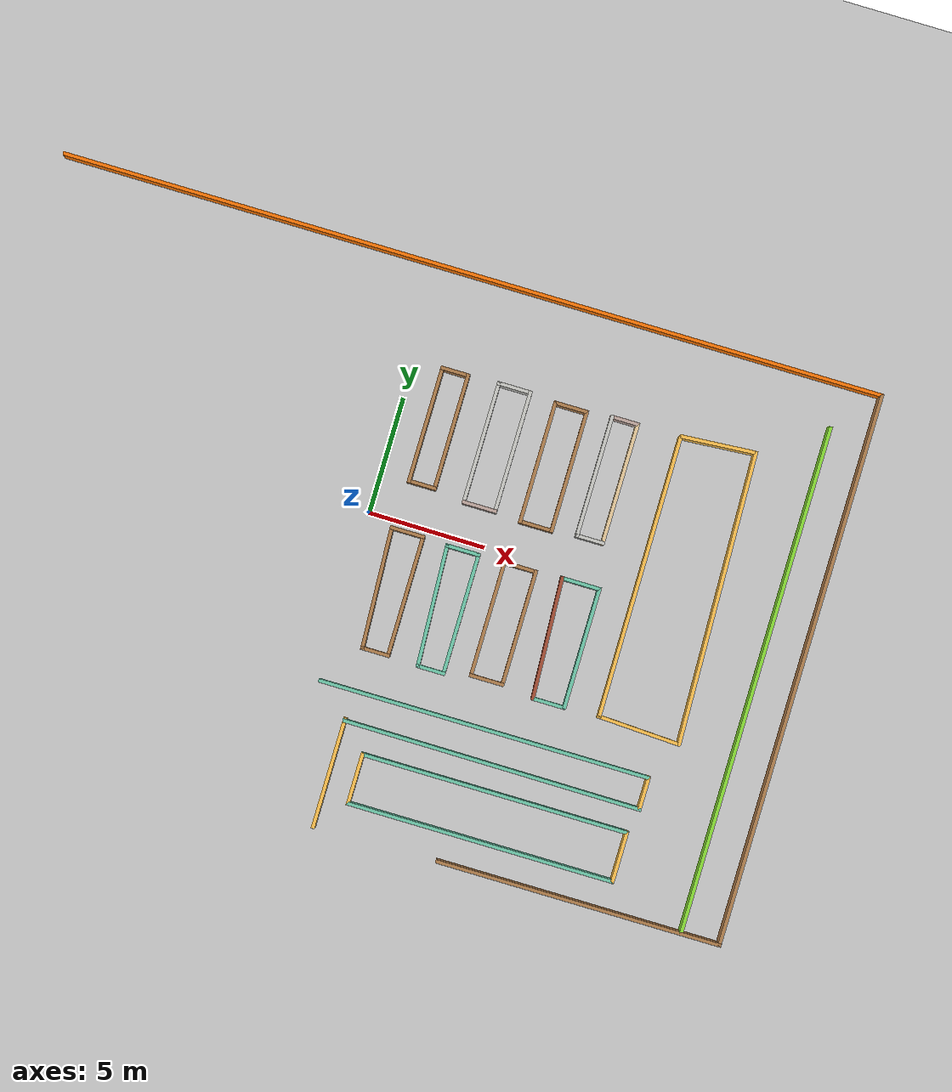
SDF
<sdf version="1.7">
 <world name="default">
  <model name="ground_plane">
   <static>1</static>
   <link name="link">
    <collision name="collision">
     <geometry><plane><normal>0 0 1</normal><size>100 100</size></plane></geometry>
     <surface>
      <contact><collide_bitmask>65535</collide_bitmask></contact>
      <friction><ode><mu>100</mu><mu2>50</mu2></ode></friction>
     </surface>
    </collision>
    <visual name="visual">
     <cast_shadows>0</cast_shadows>
     <geometry><plane><normal>0 0 1</normal><size>100 100</size></plane></geometry>
     <material>
      <script><uri>file://media/materials/scripts/gazebo.material</uri><name>Gazebo/Grey</name></script>
     </material>
    </visual>
   </link>
  </model>
  <model name="puzzle2">
   <pose>1.36187 -1.26635 0 0 -0 0</pose>
   <link name="Wall_0">
    <collision name="Wall_0_Collision">
     <geometry><box><size>35.25 0.15 2.5</size></box></geometry>
     <pose>0 0 1.25 0 -0 0</pose>
    </collision>
    <visual name="Wall_0_Visual">
     <pose>0 0 1.25 0 -0 0</pose>
     <geometry><box><size>35.25 0.15 2.5</size></box></geometry>
     <material>
      <script><uri>file://media/materials/scripts/gazebo.material</uri><name>Gazebo/Grey</name></script>
      <ambient>0.996078 0.47451 0.0196078 1</ambient>
     </material>
     <meta><layer>0</layer></meta>
    </visual>
    <pose>-0 11.8906 0 0 -0 0</pose>
   </link>
   <link name="Wall_1">
    <collision name="Wall_1_Collision">
     <geometry><box><size>23.75 0.15 2.5</size></box></geometry>
     <pose>0 0 1.25 0 -0 0</pose>
    </collision>
    <visual name="Wall_1_Visual">
     <pose>0 0 1.25 0 -0 0</pose>
     <geometry><box><size>23.75 0.15 2.5</size></box></geometry>
     <material>
      <script><uri>file://media/materials/scripts/gazebo.material</uri><name>Gazebo/Wood</name></script>
      <ambient>1 1 1 1</ambient>
     </material>
     <meta><layer>0</layer></meta>
    </visual>
    <pose>17.55 0.090589 0 0 -0 -1.5708</pose>
   </link>
   <link name="Wall_100">
    <collision name="Wall_100_Collision">
     <geometry><box><size>1.5 0.15 2.5</size></box></geometry>
     <pose>0 0 1.25 0 -0 0</pose>
    </collision>
    <visual name="Wall_100_Visual">
     <pose>0 0 1.25 0 -0 0</pose>
     <geometry><box><size>1.5 0.15 2.5</size></box></geometry>
     <material>
      <script><uri>file://media/materials/scripts/gazebo.material</uri><name>Gazebo/Grey</name></script>
      <ambient>0.435294 0.796078 0.67451 1</ambient>
     </material>
     <meta><layer>0</layer></meta>
    </visual>
    <pose>7.98306 -4.15656 0 0 -0 3.14159</pose>
   </link>
   <link name="Wall_101">
    <collision name="Wall_101_Collision">
     <geometry><box><size>5.25612 0.15 2.5</size></box></geometry>
     <pose>0 0 1.25 0 -0 0</pose>
    </collision>
    <visual name="Wall_101_Visual">
     <pose>0 0 1.25 0 -0 0</pose>
     <geometry><box><size>5.25612 0.15 2.5</size></box></geometry>
     <material>
      <script><uri>file://media/materials/scripts/gazebo.material</uri><name>Gazebo/Bricks</name></script>
      <ambient>0.435294 0.796078 0.67451 1</ambient>
     </material>
     <meta><layer>0</layer></meta>
    </visual>
    <pose>7.18306 -1.60656 0 0 -0 1.61978</pose>
   </link>
   <link name="Wall_105">
    <collision name="Wall_105_Collision">
     <geometry><box><size>4.75 0.15 2.5</size></box></geometry>
     <pose>0 0 1.25 0 -0 0</pose>
    </collision>
    <visual name="Wall_105_Visual">
     <pose>0 0 1.25 0 -0 0</pose>
     <geometry><box><size>4.75 0.15 2.5</size></box></geometry>
     <material>
      <script><uri>file://media/materials/scripts/gazebo.material</uri><name>Gazebo/Grey</name></script>
      <ambient>1 0.764706 0.305882 1</ambient>
     </material>
     <meta><layer>0</layer></meta>
    </visual>
    <pose>0.134802 -9.48263 0 0 -0 1.5708</pose>
   </link>
   <link name="Wall_106">
    <collision name="Wall_106_Collision">
     <geometry><box><size>12.823 0.15 2.5</size></box></geometry>
     <pose>0 0 1.25 0 -0 0</pose>
    </collision>
    <visual name="Wall_106_Visual">
     <pose>0 0 1.25 0 -0 0</pose>
     <geometry><box><size>12.823 0.15 2.5</size></box></geometry>
     <material>
      <script><uri>file://media/materials/scripts/gazebo.material</uri><name>Gazebo/Grey</name></script>
      <ambient>0.435294 0.796078 0.67451 1</ambient>
     </material>
     <meta><layer>0</layer></meta>
    </visual>
    <pose>6.47079 -7.26288 0 0 -0 -0.004222</pose>
   </link>
   <link name="Wall_107">
    <collision name="Wall_107_Collision">
     <geometry><box><size>1.5 0.15 2.5</size></box></geometry>
     <pose>0 0 1.25 0 -0 0</pose>
    </collision>
    <visual name="Wall_107_Visual">
     <pose>0 0 1.25 0 -0 0</pose>
     <geometry><box><size>1.5 0.15 2.5</size></box></geometry>
     <material>
      <script><uri>file://media/materials/scripts/gazebo.material</uri><name>Gazebo/Grey</name></script>
      <ambient>1 0.764706 0.305882 1</ambient>
     </material>
     <meta><layer>0</layer></meta>
    </visual>
    <pose>12.8068 -6.61463 0 0 -0 1.5708</pose>
   </link>
   <link name="Wall_108">
    <collision name="Wall_108_Collision">
     <geometry><box><size>14.25 0.15 2.5</size></box></geometry>
     <pose>0 0 1.25 0 -0 0</pose>
    </collision>
    <visual name="Wall_108_Visual">
     <pose>0 0 1.25 0 -0 0</pose>
     <geometry><box><size>14.25 0.15 2.5</size></box></geometry>
     <material>
      <script><uri>file://media/materials/scripts/gazebo.material</uri><name>Gazebo/Grey</name></script>
      <ambient>0.435294 0.796078 0.67451 1</ambient>
     </material>
     <meta><layer>0</layer></meta>
    </visual>
    <pose>5.75678 -5.93963 0 0 -0 3.14159</pose>
   </link>
   <link name="Wall_11">
    <collision name="Wall_11_Collision">
     <geometry><box><size>21.75 0.15 2.5</size></box></geometry>
     <pose>0 0 1.25 0 -0 0</pose>
    </collision>
    <visual name="Wall_11_Visual">
     <pose>0 0 1.25 0 -0 0</pose>
     <geometry><box><size>21.75 0.15 2.5</size></box></geometry>
     <material>
      <script><uri>file://media/materials/scripts/gazebo.material</uri><name>Gazebo/Grey</name></script>
      <ambient>0.541176 0.886275 0.203922 1</ambient>
     </material>
     <meta><layer>0</layer></meta>
    </visual>
    <pose>15.9 -0.809411 0 0 -0 -1.5708</pose>
   </link>
   <link name="Wall_112">
    <collision name="Wall_112_Collision">
     <geometry><box><size>11.5 0.15 2.5</size></box></geometry>
     <pose>0 0 1.25 0 -0 0</pose>
    </collision>
    <visual name="Wall_112_Visual">
     <pose>0 0 1.25 0 -0 0</pose>
     <geometry><box><size>11.5 0.15 2.5</size></box></geometry>
     <material>
      <script><uri>file://media/materials/scripts/gazebo.material</uri><name>Gazebo/Grey</name></script>
      <ambient>0.435294 0.796078 0.67451 1</ambient>
     </material>
     <meta><layer>0</layer></meta>
    </visual>
    <pose>6.91505 -8.35989 0 0 -0 0</pose>
   </link>
   <link name="Wall_113">
    <collision name="Wall_113_Collision">
     <geometry><box><size>2.25 0.15 2.5</size></box></geometry>
     <pose>0 0 1.25 0 -0 0</pose>
    </collision>
    <visual name="Wall_113_Visual">
     <pose>0 0 1.25 0 -0 0</pose>
     <geometry><box><size>2.25 0.15 2.5</size></box></geometry>
     <material>
      <script><uri>file://media/materials/scripts/gazebo.material</uri><name>Gazebo/Grey</name></script>
      <ambient>1 0.764706 0.305882 1</ambient>
     </material>
     <meta><layer>0</layer></meta>
    </visual>
    <pose>12.59 -9.40989 0 0 -0 -1.5708</pose>
   </link>
   <link name="Wall_114">
    <collision name="Wall_114_Collision">
     <geometry><box><size>11.5 0.15 2.5</size></box></geometry>
     <pose>0 0 1.25 0 -0 0</pose>
    </collision>
    <visual name="Wall_114_Visual">
     <pose>0 0 1.25 0 -0 0</pose>
     <geometry><box><size>11.5 0.15 2.5</size></box></geometry>
     <material>
      <script><uri>file://media/materials/scripts/gazebo.material</uri><name>Gazebo/Grey</name></script>
      <ambient>0.435294 0.796078 0.67451 1</ambient>
     </material>
     <meta><layer>0</layer></meta>
    </visual>
    <pose>6.91505 -10.4599 0 0 -0 3.14159</pose>
   </link>
   <link name="Wall_115">
    <collision name="Wall_115_Collision">
     <geometry><box><size>2.25 0.15 2.5</size></box></geometry>
     <pose>0 0 1.25 0 -0 0</pose>
    </collision>
    <visual name="Wall_115_Visual">
     <pose>0 0 1.25 0 -0 0</pose>
     <geometry><box><size>2.25 0.15 2.5</size></box></geometry>
     <material>
      <script><uri>file://media/materials/scripts/gazebo.material</uri><name>Gazebo/Grey</name></script>
      <ambient>1 0.764706 0.305882 1</ambient>
     </material>
     <meta><layer>0</layer></meta>
    </visual>
    <pose>1.24005 -9.40989 0 0 -0 1.5708</pose>
   </link>
   <link name="Wall_2">
    <collision name="Wall_2_Collision">
     <geometry><box><size>12.25 0.15 2.5</size></box></geometry>
     <pose>0 0 1.25 0 -0 0</pose>
    </collision>
    <visual name="Wall_2_Visual">
     <pose>0 0 1.25 0 -0 0</pose>
     <geometry><box><size>12.25 0.15 2.5</size></box></geometry>
     <material>
      <script><uri>file://media/materials/scripts/gazebo.material</uri><name>Gazebo/Wood</name></script>
      <ambient>1 1 1 1</ambient>
     </material>
     <meta><layer>0</layer></meta>
    </visual>
    <pose>11.5 -11.7094 0 0 -0 3.14159</pose>
   </link>
   <link name="Wall_38">
    <collision name="Wall_38_Collision">
     <geometry><box><size>5 0.15 2.5</size></box></geometry>
     <pose>0 0 1.25 0 -0 0</pose>
    </collision>
    <visual name="Wall_38_Visual">
     <pose>0 0 1.25 0 -0 0</pose>
     <geometry><box><size>5 0.15 2.5</size></box></geometry>
     <material>
      <script><uri>file://media/materials/scripts/gazebo.material</uri><name>Gazebo/Wood</name></script>
      <ambient>1 1 1 1</ambient>
     </material>
     <meta><layer>0</layer></meta>
    </visual>
    <pose>-0.130278 5.41789 0 0 -0 -1.5708</pose>
   </link>
   <link name="Wall_39">
    <collision name="Wall_39_Collision">
     <geometry><box><size>1.25 0.15 2.5</size></box></geometry>
     <pose>0 0 1.25 0 -0 0</pose>
    </collision>
    <visual name="Wall_39_Visual">
     <pose>0 0 1.25 0 -0 0</pose>
     <geometry><box><size>1.25 0.15 2.5</size></box></geometry>
     <material>
      <script><uri>file://media/materials/scripts/gazebo.material</uri><name>Gazebo/Wood</name></script>
      <ambient>1 1 1 1</ambient>
     </material>
     <meta><layer>0</layer></meta>
    </visual>
    <pose>0.419722 2.99289 0 0 -0 0</pose>
   </link>
   <link name="Wall_40">
    <collision name="Wall_40_Collision">
     <geometry><box><size>5 0.15 2.5</size></box></geometry>
     <pose>0 0 1.25 0 -0 0</pose>
    </collision>
    <visual name="Wall_40_Visual">
     <pose>0 0 1.25 0 -0 0</pose>
     <geometry><box><size>5 0.15 2.5</size></box></geometry>
     <material>
      <script><uri>file://media/materials/scripts/gazebo.material</uri><name>Gazebo/Wood</name></script>
      <ambient>1 1 1 1</ambient>
     </material>
     <meta><layer>0</layer></meta>
    </visual>
    <pose>0.969722 5.41789 0 0 -0 1.5708</pose>
   </link>
   <link name="Wall_41">
    <collision name="Wall_41_Collision">
     <geometry><box><size>1.25 0.15 2.5</size></box></geometry>
     <pose>0 0 1.25 0 -0 0</pose>
    </collision>
    <visual name="Wall_41_Visual">
     <pose>0 0 1.25 0 -0 0</pose>
     <geometry><box><size>1.25 0.15 2.5</size></box></geometry>
     <material>
      <script><uri>file://media/materials/scripts/gazebo.material</uri><name>Gazebo/Wood</name></script>
      <ambient>1 1 1 1</ambient>
     </material>
     <meta><layer>0</layer></meta>
    </visual>
    <pose>0.419722 7.84289 0 0 -0 3.14159</pose>
   </link>
   <link name="Wall_43">
    <collision name="Wall_43_Collision">
     <geometry><box><size>5.25 0.15 2.5</size></box></geometry>
     <pose>0 0 1.25 0 -0 0</pose>
    </collision>
    <visual name="Wall_43_Visual">
     <pose>0 0 1.25 0 -0 0</pose>
     <geometry><box><size>5.25 0.15 2.5</size></box></geometry>
     <material>
      <script><uri>file://media/materials/scripts/gazebo.material</uri><name>Gazebo/CeilingTiled</name></script>
      <ambient>0.921569 0.807843 0.615686 1</ambient>
     </material>
     <meta><layer>0</layer></meta>
    </visual>
    <pose>2.27733 5.34639 0 0 -0 -1.5708</pose>
   </link>
   <link name="Wall_44">
    <collision name="Wall_44_Collision">
     <geometry><box><size>1.5 0.15 2.5</size></box></geometry>
     <pose>0 0 1.25 0 -0 0</pose>
    </collision>
    <visual name="Wall_44_Visual">
     <pose>0 0 1.25 0 -0 0</pose>
     <geometry><box><size>1.5 0.15 2.5</size></box></geometry>
     <material>
      <script><uri>file://media/materials/scripts/gazebo.material</uri><name>Gazebo/Grey</name></script>
      <ambient>0.760784 0.662745 0.627451 1</ambient>
     </material>
     <meta><layer>0</layer></meta>
    </visual>
    <pose>2.95234 2.79639 0 0 -0 0</pose>
   </link>
   <link name="Wall_45">
    <collision name="Wall_45_Collision">
     <geometry><box><size>5.25 0.15 2.5</size></box></geometry>
     <pose>0 0 1.25 0 -0 0</pose>
    </collision>
    <visual name="Wall_45_Visual">
     <pose>0 0 1.25 0 -0 0</pose>
     <geometry><box><size>5.25 0.15 2.5</size></box></geometry>
     <material>
      <script><uri>file://media/materials/scripts/gazebo.material</uri><name>Gazebo/CeilingTiled</name></script>
      <ambient>0.921569 0.807843 0.615686 1</ambient>
     </material>
     <meta><layer>0</layer></meta>
    </visual>
    <pose>3.62733 5.34639 0 0 -0 1.5708</pose>
   </link>
   <link name="Wall_46">
    <collision name="Wall_46_Collision">
     <geometry><box><size>1.5 0.15 2.5</size></box></geometry>
     <pose>0 0 1.25 0 -0 0</pose>
    </collision>
    <visual name="Wall_46_Visual">
     <pose>0 0 1.25 0 -0 0</pose>
     <geometry><box><size>1.5 0.15 2.5</size></box></geometry>
     <material>
      <script><uri>file://media/materials/scripts/gazebo.material</uri><name>Gazebo/CeilingTiled</name></script>
      <ambient>0.760784 0.662745 0.627451 1</ambient>
     </material>
     <meta><layer>0</layer></meta>
    </visual>
    <pose>2.95234 7.89639 0 0 -0 3.14159</pose>
   </link>
   <link name="Wall_48">
    <collision name="Wall_48_Collision">
     <geometry><box><size>5.25 0.15 2.5</size></box></geometry>
     <pose>0 0 1.25 0 -0 0</pose>
    </collision>
    <visual name="Wall_48_Visual">
     <pose>0 0 1.25 0 -0 0</pose>
     <geometry><box><size>5.25 0.15 2.5</size></box></geometry>
     <material>
      <script><uri>file://media/materials/scripts/gazebo.material</uri><name>Gazebo/Wood</name></script>
      <ambient>1 1 1 1</ambient>
     </material>
     <meta><layer>0</layer></meta>
    </visual>
    <pose>4.73845 5.23938 0 0 -0 -1.5708</pose>
   </link>
   <link name="Wall_49">
    <collision name="Wall_49_Collision">
     <geometry><box><size>1.5 0.15 2.5</size></box></geometry>
     <pose>0 0 1.25 0 -0 0</pose>
    </collision>
    <visual name="Wall_49_Visual">
     <pose>0 0 1.25 0 -0 0</pose>
     <geometry><box><size>1.5 0.15 2.5</size></box></geometry>
     <material>
      <script><uri>file://media/materials/scripts/gazebo.material</uri><name>Gazebo/Wood</name></script>
      <ambient>1 1 1 1</ambient>
     </material>
     <meta><layer>0</layer></meta>
    </visual>
    <pose>5.41345 2.68938 0 0 -0 0</pose>
   </link>
   <link name="Wall_50">
    <collision name="Wall_50_Collision">
     <geometry><box><size>5.25 0.15 2.5</size></box></geometry>
     <pose>0 0 1.25 0 -0 0</pose>
    </collision>
    <visual name="Wall_50_Visual">
     <pose>0 0 1.25 0 -0 0</pose>
     <geometry><box><size>5.25 0.15 2.5</size></box></geometry>
     <material>
      <script><uri>file://media/materials/scripts/gazebo.material</uri><name>Gazebo/Wood</name></script>
      <ambient>1 1 1 1</ambient>
     </material>
     <meta><layer>0</layer></meta>
    </visual>
    <pose>6.08845 5.23938 0 0 -0 1.5708</pose>
   </link>
   <link name="Wall_51">
    <collision name="Wall_51_Collision">
     <geometry><box><size>1.5 0.15 2.5</size></box></geometry>
     <pose>0 0 1.25 0 -0 0</pose>
    </collision>
    <visual name="Wall_51_Visual">
     <pose>0 0 1.25 0 -0 0</pose>
     <geometry><box><size>1.5 0.15 2.5</size></box></geometry>
     <material>
      <script><uri>file://media/materials/scripts/gazebo.material</uri><name>Gazebo/Wood</name></script>
      <ambient>1 1 1 1</ambient>
     </material>
     <meta><layer>0</layer></meta>
    </visual>
    <pose>5.41345 7.78938 0 0 -0 3.14159</pose>
   </link>
   <link name="Wall_53">
    <collision name="Wall_53_Collision">
     <geometry><box><size>5.25 0.15 2.5</size></box></geometry>
     <pose>0 0 1.25 0 -0 0</pose>
    </collision>
    <visual name="Wall_53_Visual">
     <pose>0 0 1.25 0 -0 0</pose>
     <geometry><box><size>5.25 0.15 2.5</size></box></geometry>
     <material>
      <script><uri>file://media/materials/scripts/gazebo.material</uri><name>Gazebo/CeilingTiled</name></script>
      <ambient>0.921569 0.807843 0.615686 1</ambient>
     </material>
     <meta><layer>0</layer></meta>
    </visual>
    <pose>7.14606 5.34639 0 0 -0 -1.5708</pose>
   </link>
   <link name="Wall_54">
    <collision name="Wall_54_Collision">
     <geometry><box><size>1.25 0.15 2.5</size></box></geometry>
     <pose>0 0 1.25 0 -0 0</pose>
    </collision>
    <visual name="Wall_54_Visual">
     <pose>0 0 1.25 0 -0 0</pose>
     <geometry><box><size>1.25 0.15 2.5</size></box></geometry>
     <material>
      <script><uri>file://media/materials/scripts/gazebo.material</uri><name>Gazebo/CeilingTiled</name></script>
      <ambient>0.921569 0.807843 0.615686 1</ambient>
     </material>
     <meta><layer>0</layer></meta>
    </visual>
    <pose>7.69606 2.79639 0 0 -0 0</pose>
   </link>
   <link name="Wall_55">
    <collision name="Wall_55_Collision">
     <geometry><box><size>5.25 0.15 2.5</size></box></geometry>
     <pose>0 0 1.25 0 -0 0</pose>
    </collision>
    <visual name="Wall_55_Visual">
     <pose>0 0 1.25 0 -0 0</pose>
     <geometry><box><size>5.25 0.15 2.5</size></box></geometry>
     <material>
      <script><uri>file://media/materials/scripts/gazebo.material</uri><name>Gazebo/Grey</name></script>
      <ambient>0.921569 0.807843 0.615686 1</ambient>
     </material>
     <meta><layer>0</layer></meta>
    </visual>
    <pose>8.24606 5.34639 0 0 -0 1.5708</pose>
   </link>
   <link name="Wall_56">
    <collision name="Wall_56_Collision">
     <geometry><box><size>1.25 0.15 2.5</size></box></geometry>
     <pose>0 0 1.25 0 -0 0</pose>
    </collision>
    <visual name="Wall_56_Visual">
     <pose>0 0 1.25 0 -0 0</pose>
     <geometry><box><size>1.25 0.15 2.5</size></box></geometry>
     <material>
      <script><uri>file://media/materials/scripts/gazebo.material</uri><name>Gazebo/Grey</name></script>
      <ambient>0.760784 0.662745 0.627451 1</ambient>
     </material>
     <meta><layer>0</layer></meta>
    </visual>
    <pose>7.69606 7.89639 0 0 -0 3.14159</pose>
   </link>
   <link name="Wall_58">
    <collision name="Wall_58_Collision">
     <geometry><box><size>12.0886 0.15 2.5</size></box></geometry>
     <pose>0 0 1.25 0 -0 0</pose>
    </collision>
    <visual name="Wall_58_Visual">
     <pose>0 0 1.25 0 -0 0</pose>
     <geometry><box><size>12.0886 0.15 2.5</size></box></geometry>
     <material>
      <script><uri>file://media/materials/scripts/gazebo.material</uri><name>Gazebo/Grey</name></script>
      <ambient>1 0.764706 0.305882 1</ambient>
     </material>
     <meta><layer>0</layer></meta>
    </visual>
    <pose>10.1155 1.87362 0 0 -0 -1.56631</pose>
   </link>
   <link name="Wall_59">
    <collision name="Wall_59_Collision">
     <geometry><box><size>3.46789 0.15 2.5</size></box></geometry>
     <pose>0 0 1.25 0 -0 0</pose>
    </collision>
    <visual name="Wall_59_Visual">
     <pose>0 0 1.25 0 -0 0</pose>
     <geometry><box><size>3.46789 0.15 2.5</size></box></geometry>
     <material>
      <script><uri>file://media/materials/scripts/gazebo.material</uri><name>Gazebo/Grey</name></script>
      <ambient>1 0.764706 0.305882 1</ambient>
     </material>
     <meta><layer>0</layer></meta>
    </visual>
    <pose>11.8527 -4.17589 0 0 -0 -0.048395</pose>
   </link>
   <link name="Wall_60">
    <collision name="Wall_60_Collision">
     <geometry><box><size>12.5582 0.15 2.5</size></box></geometry>
     <pose>0 0 1.25 0 -0 0</pose>
    </collision>
    <visual name="Wall_60_Visual">
     <pose>0 0 1.25 0 -0 0</pose>
     <geometry><box><size>12.5582 0.15 2.5</size></box></geometry>
     <material>
      <script><uri>file://media/materials/scripts/gazebo.material</uri><name>Gazebo/Grey</name></script>
      <ambient>1 0.764706 0.305882 1</ambient>
     </material>
     <meta><layer>0</layer></meta>
    </visual>
    <pose>13.4295 1.94512 0 0 -0 1.60098</pose>
   </link>
   <link name="Wall_61">
    <collision name="Wall_61_Collision">
     <geometry><box><size>3.16907 0.15 2.5</size></box></geometry>
     <pose>0 0 1.25 0 -0 0</pose>
    </collision>
    <visual name="Wall_61_Visual">
     <pose>0 0 1.25 0 -0 0</pose>
     <geometry><box><size>3.16907 0.15 2.5</size></box></geometry>
     <material>
      <script><uri>file://media/materials/scripts/gazebo.material</uri><name>Gazebo/Grey</name></script>
      <ambient>1 0.764706 0.305882 1</ambient>
     </material>
     <meta><layer>0</layer></meta>
    </visual>
    <pose>11.6295 8.03938 0 0 -0 -3.07065</pose>
   </link>
   <link name="Wall_83">
    <collision name="Wall_83_Collision">
     <geometry><box><size>1.5 0.15 2.5</size></box></geometry>
     <pose>0 0 1.25 0 -0 0</pose>
    </collision>
    <visual name="Wall_83_Visual">
     <pose>0 0 1.25 0 -0 0</pose>
     <geometry><box><size>1.5 0.15 2.5</size></box></geometry>
     <material>
      <script><uri>file://media/materials/scripts/gazebo.material</uri><name>Gazebo/Wood</name></script>
      <ambient>1 1 1 1</ambient>
     </material>
     <meta><layer>0</layer></meta>
    </visual>
    <pose>0.411239 0.943438 0 0 -0 0</pose>
   </link>
   <link name="Wall_84">
    <collision name="Wall_84_Collision">
     <geometry><box><size>5.25 0.15 2.5</size></box></geometry>
     <pose>0 0 1.25 0 -0 0</pose>
    </collision>
    <visual name="Wall_84_Visual">
     <pose>0 0 1.25 0 -0 0</pose>
     <geometry><box><size>5.25 0.15 2.5</size></box></geometry>
     <material>
      <script><uri>file://media/materials/scripts/gazebo.material</uri><name>Gazebo/Wood</name></script>
      <ambient>1 1 1 1</ambient>
     </material>
     <meta><layer>0</layer></meta>
    </visual>
    <pose>1.08624 -1.60656 0 0 -0 -1.5708</pose>
   </link>
   <link name="Wall_85">
    <collision name="Wall_85_Collision">
     <geometry><box><size>1.25 0.15 2.5</size></box></geometry>
     <pose>0 0 1.25 0 -0 0</pose>
    </collision>
    <visual name="Wall_85_Visual">
     <pose>0 0 1.25 0 -0 0</pose>
     <geometry><box><size>1.25 0.15 2.5</size></box></geometry>
     <material>
      <script><uri>file://media/materials/scripts/gazebo.material</uri><name>Gazebo/Wood</name></script>
      <ambient>1 1 1 1</ambient>
     </material>
     <meta><layer>0</layer></meta>
    </visual>
    <pose>0.536239 -4.15656 0 0 -0 3.14159</pose>
   </link>
   <link name="Wall_86">
    <collision name="Wall_86_Collision">
     <geometry><box><size>5.25612 0.15 2.5</size></box></geometry>
     <pose>0 0 1.25 0 -0 0</pose>
    </collision>
    <visual name="Wall_86_Visual">
     <pose>0 0 1.25 0 -0 0</pose>
     <geometry><box><size>5.25612 0.15 2.5</size></box></geometry>
     <material>
      <script><uri>file://media/materials/scripts/gazebo.material</uri><name>Gazebo/Wood</name></script>
      <ambient>1 1 1 1</ambient>
     </material>
     <meta><layer>0</layer></meta>
    </visual>
    <pose>-0.138761 -1.60656 0 0 -0 1.61978</pose>
   </link>
   <link name="Wall_88">
    <collision name="Wall_88_Collision">
     <geometry><box><size>1.5 0.15 2.5</size></box></geometry>
     <pose>0 0 1.25 0 -0 0</pose>
    </collision>
    <visual name="Wall_88_Visual">
     <pose>0 0 1.25 0 -0 0</pose>
     <geometry><box><size>1.5 0.15 2.5</size></box></geometry>
     <material>
      <script><uri>file://media/materials/scripts/gazebo.material</uri><name>Gazebo/Grey</name></script>
      <ambient>0.435294 0.796078 0.67451 1</ambient>
     </material>
     <meta><layer>0</layer></meta>
    </visual>
    <pose>2.81083 0.88191 0 0 -0 0</pose>
   </link>
   <link name="Wall_89">
    <collision name="Wall_89_Collision">
     <geometry><box><size>5.25 0.15 2.5</size></box></geometry>
     <pose>0 0 1.25 0 -0 0</pose>
    </collision>
    <visual name="Wall_89_Visual">
     <pose>0 0 1.25 0 -0 0</pose>
     <geometry><box><size>5.25 0.15 2.5</size></box></geometry>
     <material>
      <script><uri>file://media/materials/scripts/gazebo.material</uri><name>Gazebo/Grey</name></script>
      <ambient>0.435294 0.796078 0.67451 1</ambient>
     </material>
     <meta><layer>0</layer></meta>
    </visual>
    <pose>3.48583 -1.66809 0 0 -0 -1.5708</pose>
   </link>
   <link name="Wall_90">
    <collision name="Wall_90_Collision">
     <geometry><box><size>1.25 0.15 2.5</size></box></geometry>
     <pose>0 0 1.25 0 -0 0</pose>
    </collision>
    <visual name="Wall_90_Visual">
     <pose>0 0 1.25 0 -0 0</pose>
     <geometry><box><size>1.25 0.15 2.5</size></box></geometry>
     <material>
      <script><uri>file://media/materials/scripts/gazebo.material</uri><name>Gazebo/Grey</name></script>
      <ambient>0.435294 0.796078 0.67451 1</ambient>
     </material>
     <meta><layer>0</layer></meta>
    </visual>
    <pose>2.93583 -4.21809 0 0 -0 3.14159</pose>
   </link>
   <link name="Wall_91">
    <collision name="Wall_91_Collision">
     <geometry><box><size>5.25612 0.15 2.5</size></box></geometry>
     <pose>0 0 1.25 0 -0 0</pose>
    </collision>
    <visual name="Wall_91_Visual">
     <pose>0 0 1.25 0 -0 0</pose>
     <geometry><box><size>5.25612 0.15 2.5</size></box></geometry>
     <material>
      <script><uri>file://media/materials/scripts/gazebo.material</uri><name>Gazebo/Grey</name></script>
      <ambient>0.435294 0.796078 0.67451 1</ambient>
     </material>
     <meta><layer>0</layer></meta>
    </visual>
    <pose>2.26083 -1.66809 0 0 -0 1.61978</pose>
   </link>
   <link name="Wall_93">
    <collision name="Wall_93_Collision">
     <geometry><box><size>1.5 0.15 2.5</size></box></geometry>
     <pose>0 0 1.25 0 -0 0</pose>
    </collision>
    <visual name="Wall_93_Visual">
     <pose>0 0 1.25 0 -0 0</pose>
     <geometry><box><size>1.5 0.15 2.5</size></box></geometry>
     <material>
      <script><uri>file://media/materials/scripts/gazebo.material</uri><name>Gazebo/Wood</name></script>
      <ambient>1 1 1 1</ambient>
     </material>
     <meta><layer>0</layer></meta>
    </visual>
    <pose>5.27194 0.88191 0 0 -0 0</pose>
   </link>
   <link name="Wall_94">
    <collision name="Wall_94_Collision">
     <geometry><box><size>5 0.15 2.5</size></box></geometry>
     <pose>0 0 1.25 0 -0 0</pose>
    </collision>
    <visual name="Wall_94_Visual">
     <pose>0 0 1.25 0 -0 0</pose>
     <geometry><box><size>5 0.15 2.5</size></box></geometry>
     <material>
      <script><uri>file://media/materials/scripts/gazebo.material</uri><name>Gazebo/Wood</name></script>
      <ambient>1 1 1 1</ambient>
     </material>
     <meta><layer>0</layer></meta>
    </visual>
    <pose>5.94694 -1.54309 0 0 -0 -1.5708</pose>
   </link>
   <link name="Wall_95">
    <collision name="Wall_95_Collision">
     <geometry><box><size>1.5 0.15 2.5</size></box></geometry>
     <pose>0 0 1.25 0 -0 0</pose>
    </collision>
    <visual name="Wall_95_Visual">
     <pose>0 0 1.25 0 -0 0</pose>
     <geometry><box><size>1.5 0.15 2.5</size></box></geometry>
     <material>
      <script><uri>file://media/materials/scripts/gazebo.material</uri><name>Gazebo/Wood</name></script>
      <ambient>0.435294 0.796078 0.67451 1</ambient>
     </material>
     <meta><layer>0</layer></meta>
    </visual>
    <pose>5.27194 -3.96809 0 0 -0 3.14159</pose>
   </link>
   <link name="Wall_96">
    <collision name="Wall_96_Collision">
     <geometry><box><size>5 0.15 2.5</size></box></geometry>
     <pose>0 0 1.25 0 -0 0</pose>
    </collision>
    <visual name="Wall_96_Visual">
     <pose>0 0 1.25 0 -0 0</pose>
     <geometry><box><size>5 0.15 2.5</size></box></geometry>
     <material>
      <script><uri>file://media/materials/scripts/gazebo.material</uri><name>Gazebo/Wood</name></script>
      <ambient>1 1 1 1</ambient>
     </material>
     <meta><layer>0</layer></meta>
    </visual>
    <pose>4.59694 -1.54309 0 0 -0 1.5708</pose>
   </link>
   <link name="Wall_98">
    <collision name="Wall_98_Collision">
     <geometry><box><size>1.75 0.15 2.5</size></box></geometry>
     <pose>0 0 1.25 0 -0 0</pose>
    </collision>
    <visual name="Wall_98_Visual">
     <pose>0 0 1.25 0 -0 0</pose>
     <geometry><box><size>1.75 0.15 2.5</size></box></geometry>
     <material>
      <script><uri>file://media/materials/scripts/gazebo.material</uri><name>Gazebo/Grey</name></script>
      <ambient>0.435294 0.796078 0.67451 1</ambient>
     </material>
     <meta><layer>0</layer></meta>
    </visual>
    <pose>7.85806 0.943438 0 0 -0 0</pose>
   </link>
   <link name="Wall_99">
    <collision name="Wall_99_Collision">
     <geometry><box><size>5.25 0.15 2.5</size></box></geometry>
     <pose>0 0 1.25 0 -0 0</pose>
    </collision>
    <visual name="Wall_99_Visual">
     <pose>0 0 1.25 0 -0 0</pose>
     <geometry><box><size>5.25 0.15 2.5</size></box></geometry>
     <material>
      <script><uri>file://media/materials/scripts/gazebo.material</uri><name>Gazebo/Grey</name></script>
      <ambient>0.435294 0.796078 0.67451 1</ambient>
     </material>
     <meta><layer>0</layer></meta>
    </visual>
    <pose>8.65806 -1.60656 0 0 -0 -1.5708</pose>
   </link>
   <static>1</static>
  </model>
 </world>
</sdf>
